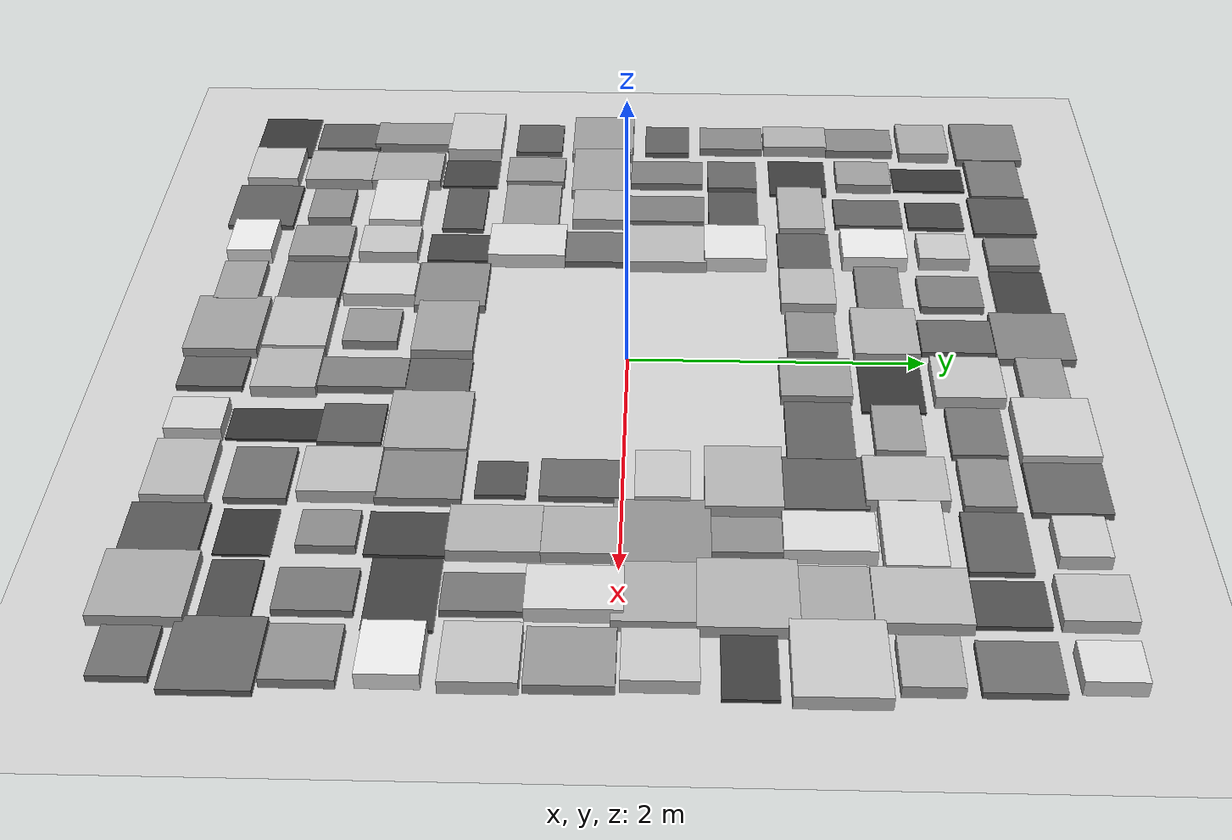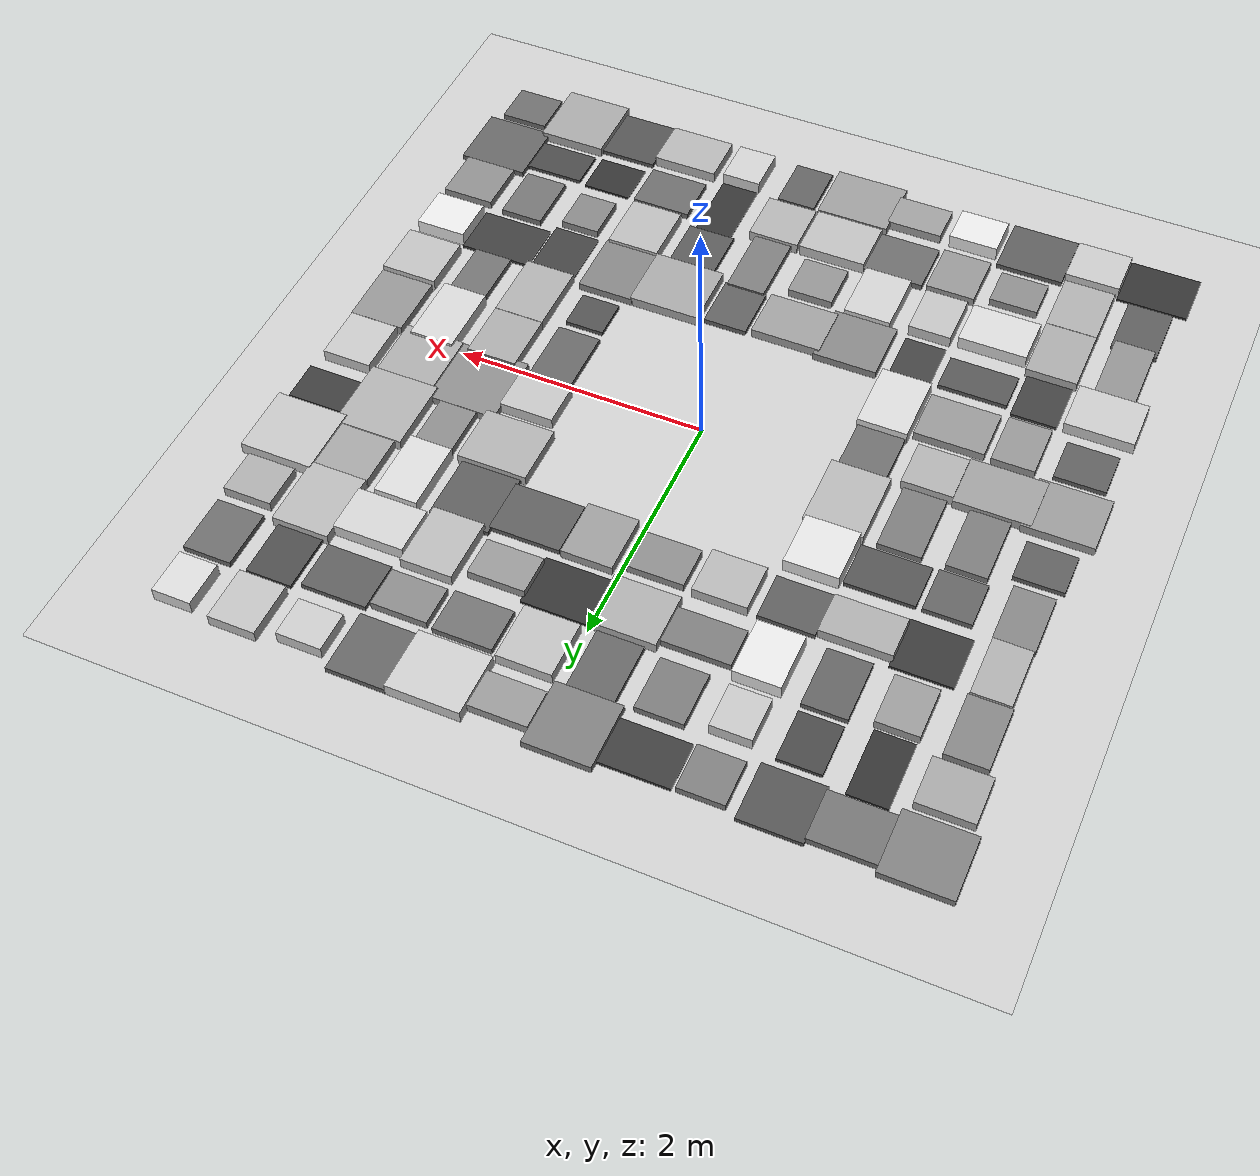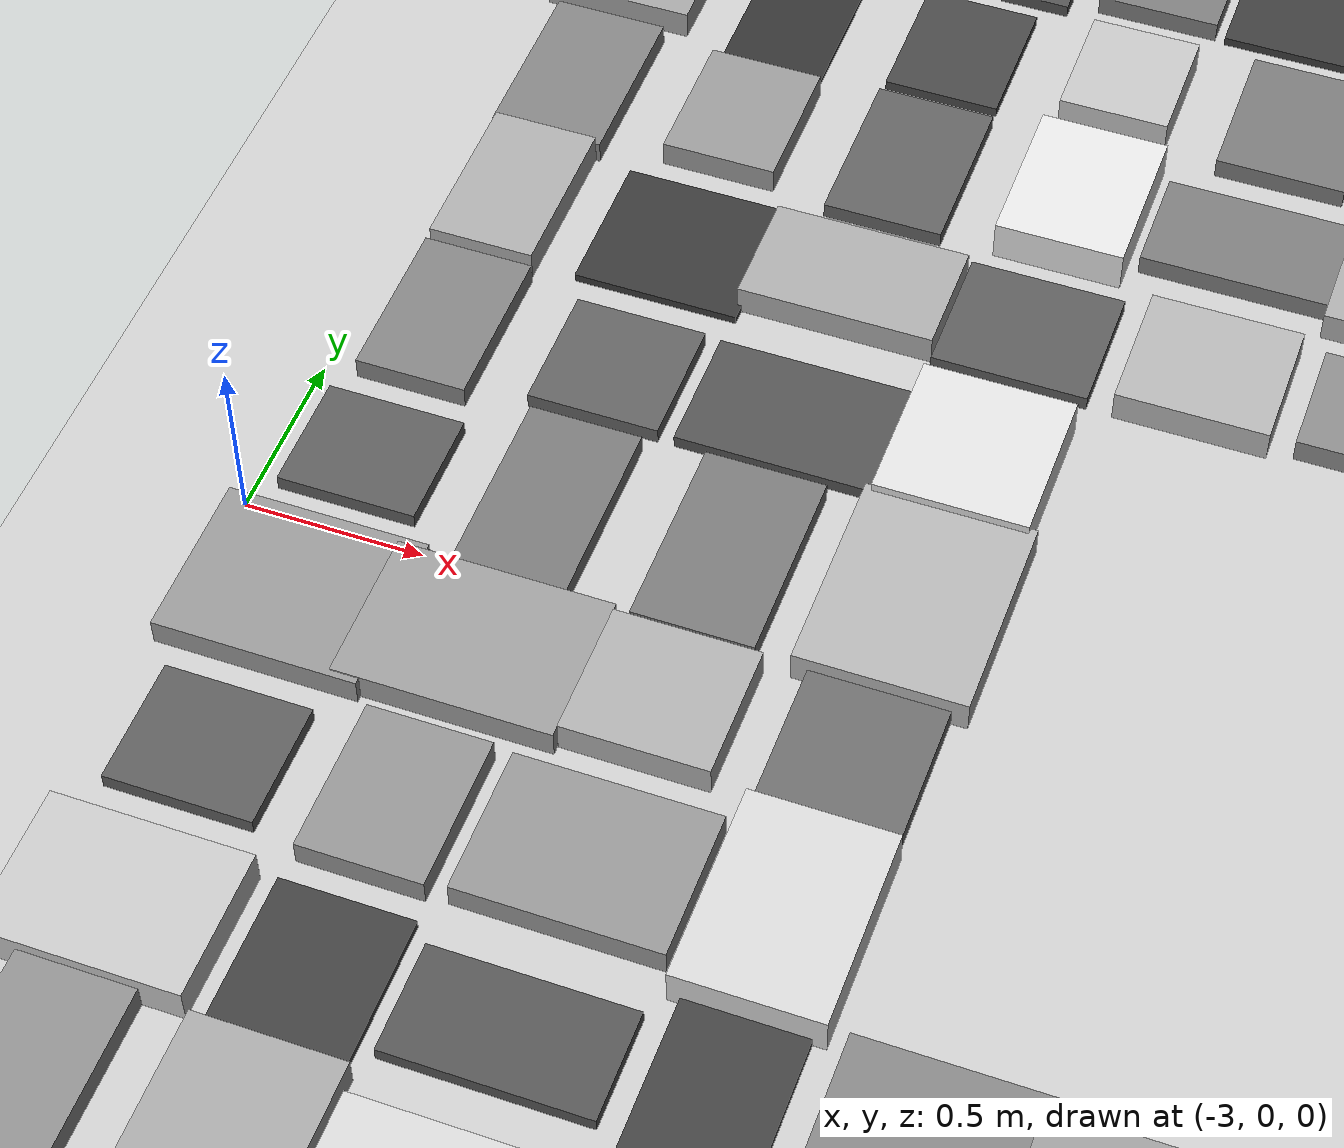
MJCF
<mujoco model="terrain_scene">
  <compiler angle="radian" coordinate="local" inertiafromgeom="true" />
  <option timestep="0.002" gravity="0.0 0.0 -9.81" iterations="50" solver="Newton" />
  <visual>
    <global offwidth="1920" offheight="1080" />
    <quality shadowsize="4096" />
    <headlight ambient="0.4 0.4 0.4" diffuse="0.6 0.6 0.6" />
  </visual>
  <asset>
    <texture name="grid_texture" type="2d" builtin="checker" rgb1="0.9 0.9 0.9" rgb2="0.7 0.7 0.7" width="512" height="512" />
    <material name="grid_material" texture="grid_texture" texrepeat="10 10" reflectance="0.1" />
  </asset>
  <worldbody>
    <geom name="ground" type="plane" size="6.0 6.0 0.1" pos="0 0 0" rgba="0.8 0.8 0.8 1.0" friction="1.0 0.005 0.0001" />
    <geom name="box_0" type="box" size="0.2814 0.2203 0.0100" pos="-2.7500 -2.7500 0.0100" rgba="0.200 0.200 0.200 1.000" friction="1.0 0.005 0.0001" />
    <geom name="box_1" type="box" size="0.1793 0.2462 0.0212" pos="-2.7500 -2.2500 0.0212" rgba="0.357 0.357 0.357 1.000" friction="1.0 0.005 0.0001" />
    <geom name="box_2" type="box" size="0.1592 0.2929 0.0360" pos="-2.7500 -1.7500 0.0360" rgba="0.564 0.564 0.564 1.000" friction="1.0 0.005 0.0001" />
    <geom name="box_3" type="box" size="0.2718 0.2061 0.0512" pos="-2.7500 -1.2500 0.0512" rgba="0.777 0.777 0.777 1.000" friction="1.0 0.005 0.0001" />
    <geom name="box_4" type="box" size="0.2019 0.1788 0.0216" pos="-2.7500 -0.7500 0.0216" rgba="0.363 0.363 0.363 1.000" friction="1.0 0.005 0.0001" />
    <geom name="box_5" type="box" size="0.2804 0.2344 0.0381" pos="-2.7500 -0.2500 0.0381" rgba="0.593 0.593 0.593 1.000" friction="1.0 0.005 0.0001" />
    <geom name="box_6" type="box" size="0.1938 0.1696 0.0217" pos="-2.7500 0.2500 0.0217" rgba="0.364 0.364 0.364 1.000" friction="1.0 0.005 0.0001" />
    <geom name="box_7" type="box" size="0.1567 0.2408 0.0323" pos="-2.7500 0.7500 0.0323" rgba="0.512 0.512 0.512 1.000" friction="1.0 0.005 0.0001" />
    <geom name="box_8" type="box" size="0.1508 0.2438 0.0437" pos="-2.7500 1.2500 0.0437" rgba="0.671 0.671 0.671 1.000" friction="1.0 0.005 0.0001" />
    <geom name="box_9" type="box" size="0.1631 0.2587 0.0326" pos="-2.7500 1.7500 0.0326" rgba="0.516 0.516 0.516 1.000" friction="1.0 0.005 0.0001" />
    <geom name="box_10" type="box" size="0.2168 0.1900 0.0415" pos="-2.7500 2.2500 0.0415" rgba="0.641 0.641 0.641 1.000" friction="1.0 0.005 0.0001" />
    <geom name="box_11" type="box" size="0.2681 0.2510 0.0311" pos="-2.7500 2.7500 0.0311" rgba="0.495 0.495 0.495 1.000" friction="1.0 0.005 0.0001" />
    <geom name="box_12" type="box" size="0.2176 0.1914 0.0508" pos="-2.2500 -2.7500 0.0508" rgba="0.772 0.772 0.772 1.000" friction="1.0 0.005 0.0001" />
    <geom name="box_13" type="box" size="0.2037 0.2530 0.0439" pos="-2.2500 -2.2500 0.0439" rgba="0.674 0.674 0.674 1.000" friction="1.0 0.005 0.0001" />
    <geom name="box_14" type="box" size="0.2024 0.2764 0.0426" pos="-2.2500 -1.7500 0.0426" rgba="0.656 0.656 0.656 1.000" friction="1.0 0.005 0.0001" />
    <geom name="box_15" type="box" size="0.1806 0.2080 0.0140" pos="-2.2500 -1.2500 0.0140" rgba="0.256 0.256 0.256 1.000" friction="1.0 0.005 0.0001" />
    <geom name="box_16" type="box" size="0.1692 0.2193 0.0367" pos="-2.2500 -0.7500 0.0367" rgba="0.574 0.574 0.574 1.000" friction="1.0 0.005 0.0001" />
    <geom name="box_17" type="box" size="0.2987 0.2162 0.0396" pos="-2.2500 -0.2500 0.0396" rgba="0.614 0.614 0.614 1.000" friction="1.0 0.005 0.0001" />
    <geom name="box_18" type="box" size="0.1576 0.2714 0.0295" pos="-2.2500 0.2500 0.0295" rgba="0.473 0.473 0.473 1.000" friction="1.0 0.005 0.0001" />
    <geom name="box_19" type="box" size="0.1850 0.1845 0.0230" pos="-2.2500 0.7500 0.0230" rgba="0.383 0.383 0.383 1.000" friction="1.0 0.005 0.0001" />
    <geom name="box_20" type="box" size="0.2348 0.2142 0.0119" pos="-2.2500 1.2500 0.0119" rgba="0.226 0.226 0.226 1.000" friction="1.0 0.005 0.0001" />
    <geom name="box_21" type="box" size="0.1644 0.2050 0.0384" pos="-2.2500 1.7500 0.0384" rgba="0.598 0.598 0.598 1.000" friction="1.0 0.005 0.0001" />
    <geom name="box_22" type="box" size="0.1511 0.2690 0.0100" pos="-2.2500 2.2500 0.0100" rgba="0.200 0.200 0.200 1.000" friction="1.0 0.005 0.0001" />
    <geom name="box_23" type="box" size="0.2674 0.1974 0.0278" pos="-2.2500 2.7500 0.0278" rgba="0.449 0.449 0.449 1.000" friction="1.0 0.005 0.0001" />
    <geom name="box_24" type="box" size="0.2696 0.2405 0.0213" pos="-1.7500 -2.7500 0.0213" rgba="0.358 0.358 0.358 1.000" friction="1.0 0.005 0.0001" />
    <geom name="box_25" type="box" size="0.1923 0.1586 0.0342" pos="-1.7500 -2.2500 0.0342" rgba="0.539 0.539 0.539 1.000" friction="1.0 0.005 0.0001" />
    <geom name="box_26" type="box" size="0.2730 0.1909 0.0557" pos="-1.7500 -1.7500 0.0557" rgba="0.840 0.840 0.840 1.000" friction="1.0 0.005 0.0001" />
    <geom name="box_27" type="box" size="0.2737 0.1521 0.0196" pos="-1.7500 -1.2500 0.0196" rgba="0.334 0.334 0.334 1.000" friction="1.0 0.005 0.0001" />
    <geom name="box_28" type="box" size="0.2764 0.2070 0.0376" pos="-1.7500 -0.7500 0.0376" rgba="0.586 0.586 0.586 1.000" friction="1.0 0.005 0.0001" />
    <geom name="box_29" type="box" size="0.2004 0.1922 0.0443" pos="-1.7500 -0.2500 0.0443" rgba="0.680 0.680 0.680 1.000" friction="1.0 0.005 0.0001" />
    <geom name="box_30" type="box" size="0.1680 0.2809 0.0296" pos="-1.7500 0.2500 0.0296" rgba="0.474 0.474 0.474 1.000" friction="1.0 0.005 0.0001" />
    <geom name="box_31" type="box" size="0.2706 0.1826 0.0188" pos="-1.7500 0.7500 0.0188" rgba="0.323 0.323 0.323 1.000" friction="1.0 0.005 0.0001" />
    <geom name="box_32" type="box" size="0.2766 0.1671 0.0433" pos="-1.7500 1.2500 0.0433" rgba="0.667 0.667 0.667 1.000" friction="1.0 0.005 0.0001" />
    <geom name="box_33" type="box" size="0.1705 0.2476 0.0230" pos="-1.7500 1.7500 0.0230" rgba="0.382 0.382 0.382 1.000" friction="1.0 0.005 0.0001" />
    <geom name="box_34" type="box" size="0.1664 0.2040 0.0158" pos="-1.7500 2.2500 0.0158" rgba="0.281 0.281 0.281 1.000" friction="1.0 0.005 0.0001" />
    <geom name="box_35" type="box" size="0.2401 0.2286 0.0188" pos="-1.7500 2.7500 0.0188" rgba="0.323 0.323 0.323 1.000" friction="1.0 0.005 0.0001" />
    <geom name="box_36" type="box" size="0.1974 0.1603 0.0598" pos="-1.2500 -2.7500 0.0598" rgba="0.897 0.897 0.897 1.000" friction="1.0 0.005 0.0001" />
    <geom name="box_37" type="box" size="0.1961 0.2196 0.0371" pos="-1.2500 -2.2500 0.0371" rgba="0.580 0.580 0.580 1.000" friction="1.0 0.005 0.0001" />
    <geom name="box_38" type="box" size="0.1707 0.2118 0.0492" pos="-1.2500 -1.7500 0.0492" rgba="0.749 0.749 0.749 1.000" friction="1.0 0.005 0.0001" />
    <geom name="box_39" type="box" size="0.1630 0.2220 0.0143" pos="-1.2500 -1.2500 0.0143" rgba="0.260 0.260 0.260 1.000" friction="1.0 0.005 0.0001" />
    <geom name="box_40" type="box" size="0.1978 0.2771 0.0555" pos="-1.2500 -0.7500 0.0555" rgba="0.837 0.837 0.837 1.000" friction="1.0 0.005 0.0001" />
    <geom name="box_41" type="box" size="0.1885 0.2827 0.0260" pos="-1.2500 -0.2500 0.0260" rgba="0.424 0.424 0.424 1.000" friction="1.0 0.005 0.0001" />
    <geom name="box_42" type="box" size="0.2325 0.2959 0.0461" pos="-1.2500 0.2500 0.0461" rgba="0.705 0.705 0.705 1.000" friction="1.0 0.005 0.0001" />
    <geom name="box_43" type="box" size="0.2124 0.2217 0.0582" pos="-1.2500 0.7500 0.0582" rgba="0.875 0.875 0.875 1.000" friction="1.0 0.005 0.0001" />
    <geom name="box_44" type="box" size="0.2181 0.1873 0.0213" pos="-1.2500 1.2500 0.0213" rgba="0.358 0.358 0.358 1.000" friction="1.0 0.005 0.0001" />
    <geom name="box_45" type="box" size="0.1821 0.2305 0.0595" pos="-1.2500 1.7500 0.0595" rgba="0.893 0.893 0.893 1.000" friction="1.0 0.005 0.0001" />
    <geom name="box_46" type="box" size="0.1576 0.1787 0.0504" pos="-1.2500 2.2500 0.0504" rgba="0.765 0.765 0.765 1.000" friction="1.0 0.005 0.0001" />
    <geom name="box_47" type="box" size="0.1775 0.1808 0.0306" pos="-1.2500 2.7500 0.0306" rgba="0.489 0.489 0.489 1.000" friction="1.0 0.005 0.0001" />
    <geom name="box_48" type="box" size="0.2242 0.1547 0.0392" pos="-0.7500 -2.7500 0.0392" rgba="0.609 0.609 0.609 1.000" friction="1.0 0.005 0.0001" />
    <geom name="box_49" type="box" size="0.2657 0.2165 0.0257" pos="-0.7500 -2.2500 0.0257" rgba="0.419 0.419 0.419 1.000" friction="1.0 0.005 0.0001" />
    <geom name="box_50" type="box" size="0.1897 0.2518 0.0531" pos="-0.7500 -1.7500 0.0531" rgba="0.804 0.804 0.804 1.000" friction="1.0 0.005 0.0001" />
    <geom name="box_51" type="box" size="0.2560 0.2476 0.0332" pos="-0.7500 -1.2500 0.0332" rgba="0.524 0.524 0.524 1.000" friction="1.0 0.005 0.0001" />
    <geom name="box_52" type="box" size="0.2111 0.1906 0.0461" pos="-0.7500 1.2500 0.0461" rgba="0.705 0.705 0.705 1.000" friction="1.0 0.005 0.0001" />
    <geom name="box_53" type="box" size="0.2861 0.1555 0.0303" pos="-0.7500 1.7500 0.0303" rgba="0.484 0.484 0.484 1.000" friction="1.0 0.005 0.0001" />
    <geom name="box_54" type="box" size="0.1840 0.2191 0.0297" pos="-0.7500 2.2500 0.0297" rgba="0.475 0.475 0.475 1.000" friction="1.0 0.005 0.0001" />
    <geom name="box_55" type="box" size="0.2938 0.1872 0.0130" pos="-0.7500 2.7500 0.0130" rgba="0.241 0.241 0.241 1.000" friction="1.0 0.005 0.0001" />
    <geom name="box_56" type="box" size="0.2956 0.2504 0.0391" pos="-0.2500 -2.7500 0.0391" rgba="0.607 0.607 0.607 1.000" friction="1.0 0.005 0.0001" />
    <geom name="box_57" type="box" size="0.2745 0.2172 0.0481" pos="-0.2500 -2.2500 0.0481" rgba="0.733 0.733 0.733 1.000" friction="1.0 0.005 0.0001" />
    <geom name="box_58" type="box" size="0.1833 0.1864 0.0362" pos="-0.2500 -1.7500 0.0362" rgba="0.566 0.566 0.566 1.000" friction="1.0 0.005 0.0001" />
    <geom name="box_59" type="box" size="0.2810 0.2092 0.0395" pos="-0.2500 -1.2500 0.0395" rgba="0.613 0.613 0.613 1.000" friction="1.0 0.005 0.0001" />
    <geom name="box_60" type="box" size="0.2221 0.1673 0.0347" pos="-0.2500 1.2500 0.0347" rgba="0.546 0.546 0.546 1.000" friction="1.0 0.005 0.0001" />
    <geom name="box_61" type="box" size="0.2569 0.2212 0.0439" pos="-0.2500 1.7500 0.0439" rgba="0.674 0.674 0.674 1.000" friction="1.0 0.005 0.0001" />
    <geom name="box_62" type="box" size="0.1806 0.2607 0.0241" pos="-0.2500 2.2500 0.0241" rgba="0.397 0.397 0.397 1.000" friction="1.0 0.005 0.0001" />
    <geom name="box_63" type="box" size="0.2583 0.2631 0.0310" pos="-0.2500 2.7500 0.0310" rgba="0.494 0.494 0.494 1.000" friction="1.0 0.005 0.0001" />
    <geom name="box_64" type="box" size="0.1571 0.2197 0.0225" pos="0.2500 -2.7500 0.0225" rgba="0.376 0.376 0.376 1.000" friction="1.0 0.005 0.0001" />
    <geom name="box_65" type="box" size="0.2053 0.2158 0.0449" pos="0.2500 -2.2500 0.0449" rgba="0.689 0.689 0.689 1.000" friction="1.0 0.005 0.0001" />
    <geom name="box_66" type="box" size="0.1543 0.2989 0.0301" pos="0.2500 -1.7500 0.0301" rgba="0.481 0.481 0.481 1.000" friction="1.0 0.005 0.0001" />
    <geom name="box_67" type="box" size="0.1737 0.2198 0.0225" pos="0.2500 -1.2500 0.0225" rgba="0.375 0.375 0.375 1.000" friction="1.0 0.005 0.0001" />
    <geom name="box_68" type="box" size="0.2011 0.2347 0.0390" pos="0.2500 1.2500 0.0390" rgba="0.605 0.605 0.605 1.000" friction="1.0 0.005 0.0001" />
    <geom name="box_69" type="box" size="0.2882 0.2098 0.0105" pos="0.2500 1.7500 0.0105" rgba="0.207 0.207 0.207 1.000" friction="1.0 0.005 0.0001" />
    <geom name="box_70" type="box" size="0.2149 0.2294 0.0485" pos="0.2500 2.2500 0.0485" rgba="0.739 0.739 0.739 1.000" friction="1.0 0.005 0.0001" />
    <geom name="box_71" type="box" size="0.2392 0.1528 0.0379" pos="0.2500 2.7500 0.0379" rgba="0.591 0.591 0.591 1.000" friction="1.0 0.005 0.0001" />
    <geom name="box_72" type="box" size="0.1577 0.1852 0.0533" pos="0.7500 -2.7500 0.0533" rgba="0.806 0.806 0.806 1.000" friction="1.0 0.005 0.0001" />
    <geom name="box_73" type="box" size="0.1514 0.2975 0.0104" pos="0.7500 -2.2500 0.0104" rgba="0.206 0.206 0.206 1.000" friction="1.0 0.005 0.0001" />
    <geom name="box_74" type="box" size="0.1911 0.2052 0.0207" pos="0.7500 -1.7500 0.0207" rgba="0.349 0.349 0.349 1.000" friction="1.0 0.005 0.0001" />
    <geom name="box_75" type="box" size="0.2869 0.2658 0.0419" pos="0.7500 -1.2500 0.0419" rgba="0.647 0.647 0.647 1.000" friction="1.0 0.005 0.0001" />
    <geom name="box_76" type="box" size="0.2795 0.2167 0.0218" pos="0.7500 1.2500 0.0218" rgba="0.365 0.365 0.365 1.000" friction="1.0 0.005 0.0001" />
    <geom name="box_77" type="box" size="0.2246 0.1571 0.0377" pos="0.7500 1.7500 0.0377" rgba="0.588 0.588 0.588 1.000" friction="1.0 0.005 0.0001" />
    <geom name="box_78" type="box" size="0.2318 0.1760 0.0274" pos="0.7500 2.2500 0.0274" rgba="0.443 0.443 0.443 1.000" friction="1.0 0.005 0.0001" />
    <geom name="box_79" type="box" size="0.2859 0.2495 0.0521" pos="0.7500 2.7500 0.0521" rgba="0.790 0.790 0.790 1.000" friction="1.0 0.005 0.0001" />
    <geom name="box_80" type="box" size="0.2633 0.2010 0.0456" pos="1.2500 -2.7500 0.0456" rgba="0.699 0.699 0.699 1.000" friction="1.0 0.005 0.0001" />
    <geom name="box_81" type="box" size="0.2384 0.1947 0.0256" pos="1.2500 -2.2500 0.0256" rgba="0.419 0.419 0.419 1.000" friction="1.0 0.005 0.0001" />
    <geom name="box_82" type="box" size="0.2104 0.2448 0.0471" pos="1.2500 -1.7500 0.0471" rgba="0.719 0.719 0.719 1.000" friction="1.0 0.005 0.0001" />
    <geom name="box_83" type="box" size="0.2289 0.2672 0.0324" pos="1.2500 -1.2500 0.0324" rgba="0.513 0.513 0.513 1.000" friction="1.0 0.005 0.0001" />
    <geom name="box_84" type="box" size="0.1562 0.1575 0.0182" pos="1.2500 -0.7500 0.0182" rgba="0.314 0.314 0.314 1.000" friction="1.0 0.005 0.0001" />
    <geom name="box_85" type="box" size="0.1731 0.2598 0.0243" pos="1.2500 -0.2500 0.0243" rgba="0.400 0.400 0.400 1.000" friction="1.0 0.005 0.0001" />
    <geom name="box_86" type="box" size="0.2154 0.1712 0.0496" pos="1.2500 0.2500 0.0496" rgba="0.755 0.755 0.755 1.000" friction="1.0 0.005 0.0001" />
    <geom name="box_87" type="box" size="0.2789 0.2416 0.0444" pos="1.2500 0.7500 0.0444" rgba="0.681 0.681 0.681 1.000" friction="1.0 0.005 0.0001" />
    <geom name="box_88" type="box" size="0.2385 0.2677 0.0214" pos="1.2500 1.2500 0.0214" rgba="0.360 0.360 0.360 1.000" friction="1.0 0.005 0.0001" />
    <geom name="box_89" type="box" size="0.2039 0.2575 0.0468" pos="1.2500 1.7500 0.0468" rgba="0.715 0.715 0.715 1.000" friction="1.0 0.005 0.0001" />
    <geom name="box_90" type="box" size="0.2202 0.1590 0.0340" pos="1.2500 2.2500 0.0340" rgba="0.535 0.535 0.535 1.000" friction="1.0 0.005 0.0001" />
    <geom name="box_91" type="box" size="0.2474 0.2483 0.0236" pos="1.2500 2.7500 0.0236" rgba="0.391 0.391 0.391 1.000" friction="1.0 0.005 0.0001" />
    <geom name="box_92" type="box" size="0.2281 0.2441 0.0187" pos="1.7500 -2.7500 0.0187" rgba="0.322 0.322 0.322 1.000" friction="1.0 0.005 0.0001" />
    <geom name="box_93" type="box" size="0.1956 0.1722 0.0100" pos="1.7500 -2.2500 0.0100" rgba="0.200 0.200 0.200 1.000" friction="1.0 0.005 0.0001" />
    <geom name="box_94" type="box" size="0.1568 0.1800 0.0332" pos="1.7500 -1.7500 0.0332" rgba="0.524 0.524 0.524 1.000" friction="1.0 0.005 0.0001" />
    <geom name="box_95" type="box" size="0.1863 0.2728 0.0140" pos="1.7500 -1.2500 0.0140" rgba="0.257 0.257 0.257 1.000" friction="1.0 0.005 0.0001" />
    <geom name="box_96" type="box" size="0.2015 0.2826 0.0440" pos="1.7500 -0.7500 0.0440" rgba="0.676 0.676 0.676 1.000" friction="1.0 0.005 0.0001" />
    <geom name="box_97" type="box" size="0.2013 0.2573 0.0429" pos="1.7500 -0.2500 0.0429" rgba="0.660 0.660 0.660 1.000" friction="1.0 0.005 0.0001" />
    <geom name="box_98" type="box" size="0.2927 0.2953 0.0349" pos="1.7500 0.2500 0.0349" rgba="0.548 0.548 0.548 1.000" friction="1.0 0.005 0.0001" />
    <geom name="box_99" type="box" size="0.1518 0.2856 0.0343" pos="1.7500 0.7500 0.0343" rgba="0.540 0.540 0.540 1.000" friction="1.0 0.005 0.0001" />
    <geom name="box_100" type="box" size="0.1710 0.2793 0.0559" pos="1.7500 1.2500 0.0559" rgba="0.843 0.843 0.843 1.000" friction="1.0 0.005 0.0001" />
    <geom name="box_101" type="box" size="0.2786 0.1888 0.0536" pos="1.7500 1.7500 0.0536" rgba="0.811 0.811 0.811 1.000" friction="1.0 0.005 0.0001" />
    <geom name="box_102" type="box" size="0.2564 0.1925 0.0217" pos="1.7500 2.2500 0.0217" rgba="0.364 0.364 0.364 1.000" friction="1.0 0.005 0.0001" />
    <geom name="box_103" type="box" size="0.1768 0.1594 0.0517" pos="1.7500 2.7500 0.0517" rgba="0.784 0.784 0.784 1.000" friction="1.0 0.005 0.0001" />
    <geom name="box_104" type="box" size="0.2713 0.2820 0.0418" pos="2.2500 -2.7500 0.0418" rgba="0.645 0.645 0.645 1.000" friction="1.0 0.005 0.0001" />
    <geom name="box_105" type="box" size="0.2493 0.1550 0.0160" pos="2.2500 -2.2500 0.0160" rgba="0.284 0.284 0.284 1.000" friction="1.0 0.005 0.0001" />
    <geom name="box_106" type="box" size="0.1725 0.2375 0.0276" pos="2.2500 -1.7500 0.0276" rgba="0.447 0.447 0.447 1.000" friction="1.0 0.005 0.0001" />
    <geom name="box_107" type="box" size="0.2899 0.2088 0.0131" pos="2.2500 -1.2500 0.0131" rgba="0.244 0.244 0.244 1.000" friction="1.0 0.005 0.0001" />
    <geom name="box_108" type="box" size="0.1536 0.2716 0.0273" pos="2.2500 -0.7500 0.0273" rgba="0.443 0.443 0.443 1.000" friction="1.0 0.005 0.0001" />
    <geom name="box_109" type="box" size="0.1786 0.2860 0.0545" pos="2.2500 -0.2500 0.0545" rgba="0.824 0.824 0.824 1.000" friction="1.0 0.005 0.0001" />
    <geom name="box_110" type="box" size="0.2412 0.2881 0.0430" pos="2.2500 0.2500 0.0430" rgba="0.662 0.662 0.662 1.000" friction="1.0 0.005 0.0001" />
    <geom name="box_111" type="box" size="0.2766 0.2967 0.0445" pos="2.2500 0.7500 0.0445" rgba="0.683 0.683 0.683 1.000" friction="1.0 0.005 0.0001" />
    <geom name="box_112" type="box" size="0.2312 0.2135 0.0413" pos="2.2500 1.2500 0.0413" rgba="0.638 0.638 0.638 1.000" friction="1.0 0.005 0.0001" />
    <geom name="box_113" type="box" size="0.2257 0.2843 0.0464" pos="2.2500 1.7500 0.0464" rgba="0.710 0.710 0.710 1.000" friction="1.0 0.005 0.0001" />
    <geom name="box_114" type="box" size="0.1821 0.2320 0.0169" pos="2.2500 2.2500 0.0169" rgba="0.297 0.297 0.297 1.000" friction="1.0 0.005 0.0001" />
    <geom name="box_115" type="box" size="0.1869 0.2179 0.0489" pos="2.2500 2.7500 0.0489" rgba="0.745 0.745 0.745 1.000" friction="1.0 0.005 0.0001" />
    <geom name="box_116" type="box" size="0.1921 0.1743 0.0259" pos="2.7500 -2.7500 0.0259" rgba="0.422 0.422 0.422 1.000" friction="1.0 0.005 0.0001" />
    <geom name="box_117" type="box" size="0.2776 0.2655 0.0238" pos="2.7500 -2.2500 0.0238" rgba="0.394 0.394 0.394 1.000" friction="1.0 0.005 0.0001" />
    <geom name="box_118" type="box" size="0.2102 0.2136 0.0350" pos="2.7500 -1.7500 0.0350" rgba="0.550 0.550 0.550 1.000" friction="1.0 0.005 0.0001" />
    <geom name="box_119" type="box" size="0.2039 0.1826 0.0600" pos="2.7500 -1.2500 0.0600" rgba="0.900 0.900 0.900 1.000" friction="1.0 0.005 0.0001" />
    <geom name="box_120" type="box" size="0.2274 0.2249 0.0486" pos="2.7500 -0.7500 0.0486" rgba="0.740 0.740 0.740 1.000" friction="1.0 0.005 0.0001" />
    <geom name="box_121" type="box" size="0.2185 0.2556 0.0369" pos="2.7500 -0.2500 0.0369" rgba="0.577 0.577 0.577 1.000" friction="1.0 0.005 0.0001" />
    <geom name="box_122" type="box" size="0.1966 0.2211 0.0506" pos="2.7500 0.2500 0.0506" rgba="0.769 0.769 0.769 1.000" friction="1.0 0.005 0.0001" />
    <geom name="box_123" type="box" size="0.2532 0.1622 0.0126" pos="2.7500 0.7500 0.0126" rgba="0.237 0.237 0.237 1.000" friction="1.0 0.005 0.0001" />
    <geom name="box_124" type="box" size="0.2891 0.2755 0.0501" pos="2.7500 1.2500 0.0501" rgba="0.761 0.761 0.761 1.000" friction="1.0 0.005 0.0001" />
    <geom name="box_125" type="box" size="0.1930 0.1784 0.0434" pos="2.7500 1.7500 0.0434" rgba="0.667 0.667 0.667 1.000" friction="1.0 0.005 0.0001" />
    <geom name="box_126" type="box" size="0.1922 0.2340 0.0257" pos="2.7500 2.2500 0.0257" rgba="0.420 0.420 0.420 1.000" friction="1.0 0.005 0.0001" />
    <geom name="box_127" type="box" size="0.1542 0.1819 0.0559" pos="2.7500 2.7500 0.0559" rgba="0.842 0.842 0.842 1.000" friction="1.0 0.005 0.0001" />
    <light name="main_light" pos="0 0 5" dir="0 0 -1" diffuse="0.6 0.6 0.6" specular="0.3 0.3 0.3" castshadow="true" />
    <camera name="track_cam" mode="trackcom" pos="3.0 0 2" xyaxes="0 1 0 -0.5 0 1" />
    <camera name="overview" pos="5 5 8" quat="0.5 0.5 -0.5 -0.5" />
  </worldbody>
</mujoco>
